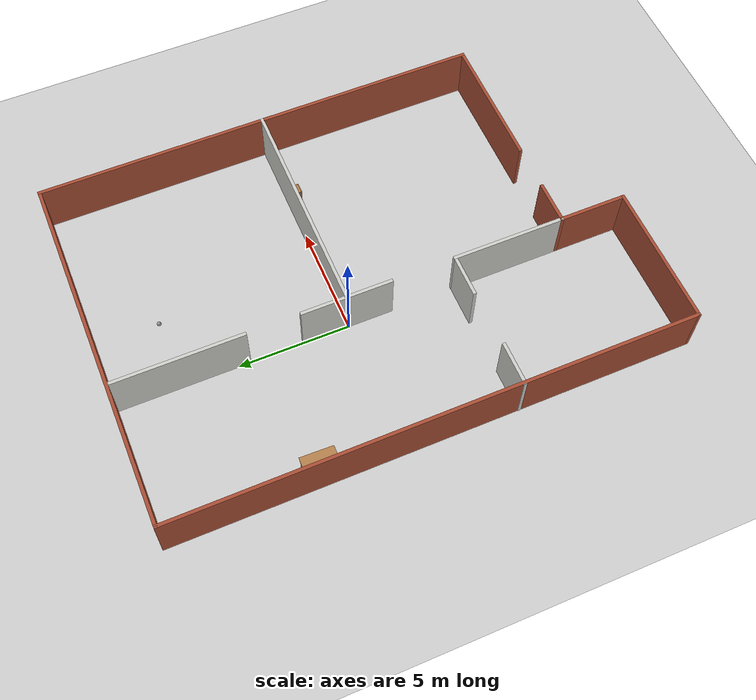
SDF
<sdf version="1.6">
 <world name="default">
  <model name="ground_plane">
   <static>1</static>
   <link name="link">
    <collision name="collision">
     <geometry><plane><normal>0 0 1</normal><size>100 100</size></plane></geometry>
     <surface><friction><ode><mu>100</mu><mu2>50</mu2></ode></friction></surface>
    </collision>
    <visual name="visual">
     <cast_shadows>0</cast_shadows>
     <geometry><plane><normal>0 0 1</normal><size>100 100</size></plane></geometry>
     <material>
      <script><uri>file://media/materials/scripts/gazebo.material</uri><name>Gazebo/Grey</name></script>
     </material>
    </visual>
   </link>
  </model>
  <model name="Building">
   <pose>1.88689 -1.28718 0 0 -0 0</pose>
   <link name="Wall_30">
    <collision name="Wall_30_Collision">
     <geometry><box><size>10.15 0.15 2.5</size></box></geometry>
     <pose>0 0 1.25 0 -0 0</pose>
    </collision>
    <visual name="Wall_30_Visual">
     <pose>0 0 1.25 0 -0 0</pose>
     <geometry><box><size>10.15 0.15 2.5</size></box></geometry>
     <material>
      <script><uri>file://media/materials/scripts/gazebo.material</uri><name>Gazebo/CeilingTiled</name></script>
      <ambient>0.203922 0.396078 0.643137 1</ambient>
     </material>
     <meta><layer>0</layer></meta>
    </visual>
    <pose>3.18412 1.325 0 0 -0 0</pose>
   </link>
   <link name="Wall_34">
    <collision name="Wall_34_Collision">
     <geometry><box><size>10.15 0.15 2.5</size></box></geometry>
     <pose>0 0 1.25 0 -0 0</pose>
    </collision>
    <visual name="Wall_34_Visual">
     <pose>0 0 1.25 0 -0 0</pose>
     <geometry><box><size>10.15 0.15 2.5</size></box></geometry>
     <material>
      <script><uri>file://media/materials/scripts/gazebo.material</uri><name>Gazebo/Bricks</name></script>
      <ambient>1 1 1 1</ambient>
     </material>
     <meta><layer>0</layer></meta>
    </visual>
    <pose>8.18412 -3.675 0 0 -0 -1.5708</pose>
   </link>
   <link name="Wall_36">
    <collision name="Wall_36_Collision">
     <geometry><box><size>6.15 0.15 2.5</size></box></geometry>
     <pose>0 0 1.25 0 -0 0</pose>
    </collision>
    <visual name="Wall_36_Visual">
     <pose>0 0 1.25 0 -0 0</pose>
     <geometry><box><size>6.15 0.15 2.5</size></box></geometry>
     <material>
      <script><uri>file://media/materials/scripts/gazebo.material</uri><name>Gazebo/Bricks</name></script>
      <ambient>1 1 1 1</ambient>
     </material>
     <meta><layer>0</layer></meta>
    </visual>
    <pose>5.18412 -8.675 0 0 -0 3.14159</pose>
   </link>
   <link name="Wall_38">
    <collision name="Wall_38_Collision">
     <geometry><box><size>5.2029 0.15 2.5</size></box></geometry>
     <pose>0 0 1.25 0 -0 0</pose>
    </collision>
    <visual name="Wall_38_Visual">
     <pose>0 0 1.25 0 -0 0</pose>
     <geometry><box><size>5.2029 0.15 2.5</size></box></geometry>
     <material>
      <script><uri>file://media/materials/scripts/gazebo.material</uri><name>Gazebo/CeilingTiled</name></script>
      <ambient>0.203922 0.396078 0.643137 1</ambient>
     </material>
     <meta><layer>0</layer></meta>
    </visual>
    <pose>-1.81588 -6.14855 0 0 -0 1.5708</pose>
   </link>
   <link name="Wall_40">
    <collision name="Wall_40_Collision">
     <geometry><box><size>2 0.15 2.5</size></box></geometry>
     <pose>0 0 1.25 0 -0 0</pose>
    </collision>
    <visual name="Wall_40_Visual">
     <pose>0 0 1.25 0 -0 0</pose>
     <geometry><box><size>2 0.15 2.5</size></box></geometry>
     <material>
      <script><uri>file://media/materials/scripts/gazebo.material</uri><name>Gazebo/Bricks</name></script>
      <ambient>1 1 1 1</ambient>
     </material>
     <meta><layer>0</layer></meta>
    </visual>
    <pose>-0.890877 -8.675 0 0 -0 0</pose>
   </link>
   <link name="Wall_42">
    <collision name="Wall_42_Collision">
     <geometry><box><size>3.15 0.15 2.5</size></box></geometry>
     <pose>0 0 1.25 0 -0 0</pose>
    </collision>
    <visual name="Wall_42_Visual">
     <pose>0 0 1.25 0 -0 0</pose>
     <geometry><box><size>3.15 0.15 2.5</size></box></geometry>
     <material>
      <script><uri>file://media/materials/scripts/gazebo.material</uri><name>Gazebo/Bricks</name></script>
      <ambient>1 1 1 1</ambient>
     </material>
     <meta><layer>0</layer></meta>
    </visual>
    <pose>-1.81588 -10.175 0 0 -0 -1.5708</pose>
   </link>
   <link name="Wall_44">
    <collision name="Wall_44_Collision">
     <geometry><box><size>6.5 0.15 2.5</size></box></geometry>
     <pose>0 0 1.25 0 -0 0</pose>
    </collision>
    <visual name="Wall_44_Visual">
     <pose>0 0 1.25 0 -0 0</pose>
     <geometry><box><size>6.5 0.15 2.5</size></box></geometry>
     <material>
      <script><uri>file://media/materials/scripts/gazebo.material</uri><name>Gazebo/Bricks</name></script>
      <ambient>1 1 1 1</ambient>
     </material>
     <meta><layer>0</layer></meta>
    </visual>
    <pose>-4.99088 -11.675 0 0 -0 3.14159</pose>
   </link>
   <link name="Wall_45">
    <collision name="Wall_45_Collision">
     <geometry><box><size>23.5 0.15 2.5</size></box></geometry>
     <pose>0 0 1.25 0 -0 0</pose>
    </collision>
    <visual name="Wall_45_Visual">
     <pose>0 0 1.25 0 -0 0</pose>
     <geometry><box><size>23.5 0.15 2.5</size></box></geometry>
     <material>
      <script><uri>file://media/materials/scripts/gazebo.material</uri><name>Gazebo/Bricks</name></script>
      <ambient>1 1 1 1</ambient>
     </material>
     <meta><layer>0</layer></meta>
    </visual>
    <pose>-8.16588 0 0 0 -0 1.5708</pose>
   </link>
   <link name="Wall_47">
    <collision name="Wall_47_Collision">
     <geometry><box><size>2.15 0.15 2.5</size></box></geometry>
     <pose>0 0 1.25 0 -0 0</pose>
    </collision>
    <visual name="Wall_47_Visual">
     <pose>0 0 1.25 0 -0 0</pose>
     <geometry><box><size>2.15 0.15 2.5</size></box></geometry>
     <material>
      <script><uri>file://media/materials/scripts/gazebo.material</uri><name>Gazebo/CeilingTiled</name></script>
      <ambient>0.203922 0.396078 0.643137 1</ambient>
     </material>
     <meta><layer>0</layer></meta>
    </visual>
    <pose>-1.81588 0.325 0 0 -0 1.5708</pose>
   </link>
   <link name="Wall_49">
    <collision name="Wall_49_Collision">
     <geometry><box><size>2 0.15 2.5</size></box></geometry>
     <pose>0 0 1.25 0 -0 0</pose>
    </collision>
    <visual name="Wall_49_Visual">
     <pose>0 0 1.25 0 -0 0</pose>
     <geometry><box><size>2 0.15 2.5</size></box></geometry>
     <material>
      <script><uri>file://media/materials/scripts/gazebo.material</uri><name>Gazebo/CeilingTiled</name></script>
      <ambient>0.203922 0.396078 0.643137 1</ambient>
     </material>
     <meta><layer>0</layer></meta>
    </visual>
    <pose>-7.25912 -3.70088 0 0 -0 0</pose>
   </link>
   <link name="Wall_51">
    <collision name="Wall_51_Collision">
     <geometry><box><size>2 0.15 2.5</size></box></geometry>
     <pose>0 0 1.25 0 -0 0</pose>
    </collision>
    <visual name="Wall_51_Visual">
     <pose>0 0 1.25 0 -0 0</pose>
     <geometry><box><size>2 0.15 2.5</size></box></geometry>
     <material>
      <script><uri>file://media/materials/scripts/gazebo.material</uri><name>Gazebo/CeilingTiled</name></script>
      <ambient>0.203922 0.396078 0.643137 1</ambient>
     </material>
     <meta><layer>0</layer></meta>
    </visual>
    <pose>-2.74088 -3.6221 0 0 -0 3.14159</pose>
   </link>
   <link name="Wall_53">
    <collision name="Wall_53_Collision">
     <geometry><box><size>2.15 0.15 2.5</size></box></geometry>
     <pose>0 0 1.25 0 -0 0</pose>
    </collision>
    <visual name="Wall_53_Visual">
     <pose>0 0 1.25 0 -0 0</pose>
     <geometry><box><size>2.15 0.15 2.5</size></box></geometry>
     <material>
      <script><uri>file://media/materials/scripts/gazebo.material</uri><name>Gazebo/CeilingTiled</name></script>
      <ambient>0.203922 0.396078 0.643137 1</ambient>
     </material>
     <meta><layer>0</layer></meta>
    </visual>
    <pose>-1.81588 2.325 0 0 -0 1.5708</pose>
   </link>
   <link name="Wall_55">
    <collision name="Wall_55_Collision">
     <geometry><box><size>16.5 0.15 2.5</size></box></geometry>
     <pose>0 0 1.25 0 -0 0</pose>
    </collision>
    <visual name="Wall_55_Visual">
     <pose>0 0 1.25 0 -0 0</pose>
     <geometry><box><size>16.5 0.15 2.5</size></box></geometry>
     <material>
      <script><uri>file://media/materials/scripts/gazebo.material</uri><name>Gazebo/Bricks</name></script>
      <ambient>1 1 1 1</ambient>
     </material>
     <meta><layer>0</layer></meta>
    </visual>
    <pose>0.009123 11.675 0 0 -0 0</pose>
   </link>
   <link name="Wall_57">
    <collision name="Wall_57_Collision">
     <geometry><box><size>10.5 0.15 2.5</size></box></geometry>
     <pose>0 0 1.25 0 -0 0</pose>
    </collision>
    <visual name="Wall_57_Visual">
     <pose>0 0 1.25 0 -0 0</pose>
     <geometry><box><size>10.5 0.15 2.5</size></box></geometry>
     <material>
      <script><uri>file://media/materials/scripts/gazebo.material</uri><name>Gazebo/Bricks</name></script>
      <ambient>1 1 1 1</ambient>
     </material>
     <meta><layer>0</layer></meta>
    </visual>
    <pose>8.18412 6.5 0 0 -0 1.5708</pose>
   </link>
   <link name="Wall_59">
    <collision name="Wall_59_Collision">
     <geometry><box><size>5.9 0.15 2.5</size></box></geometry>
     <pose>0 0 1.25 0 -0 0</pose>
    </collision>
    <visual name="Wall_59_Visual">
     <pose>0 0 1.25 0 -0 0</pose>
     <geometry><box><size>5.9 0.15 2.5</size></box></geometry>
     <material>
      <script><uri>file://media/materials/scripts/gazebo.material</uri><name>Gazebo/CeilingTiled</name></script>
      <ambient>0.203922 0.396078 0.643137 1</ambient>
     </material>
     <meta><layer>0</layer></meta>
    </visual>
    <pose>-1.81588 8.7 0 0 -0 -1.5708</pose>
   </link>
   <static>1</static>
  </model>
  <model name="table">
   <static>1</static>
   <link name="link">
    <collision name="surface">
     <pose>0 0 1 0 -0 0</pose>
     <geometry><box><size>1.5 0.8 0.03</size></box></geometry>
     <surface><friction><ode><mu>0.6</mu><mu2>0.6</mu2></ode></friction></surface>
    </collision>
    <visual name="visual1">
     <pose>0 0 1 0 -0 0</pose>
     <geometry><box><size>1.5 0.8 0.03</size></box></geometry>
     <material>
      <script><uri>file://media/materials/scripts/gazebo.material</uri><name>Gazebo/Wood</name></script>
     </material>
    </visual>
    <collision name="front_left_leg">
     <pose>0.68 0.38 0.5 0 -0 0</pose>
     <geometry><cylinder><radius>0.02</radius><length>1</length></cylinder></geometry>
    </collision>
    <visual name="front_left_leg">
     <pose>0.68 0.38 0.5 0 -0 0</pose>
     <geometry><cylinder><radius>0.02</radius><length>1</length></cylinder></geometry>
     <material>
      <script><uri>file://media/materials/scripts/gazebo.material</uri><name>Gazebo/Grey</name></script>
     </material>
    </visual>
    <collision name="front_right_leg">
     <pose>0.68 -0.38 0.5 0 -0 0</pose>
     <geometry><cylinder><radius>0.02</radius><length>1</length></cylinder></geometry>
    </collision>
    <visual name="front_right_leg">
     <pose>0.68 -0.38 0.5 0 -0 0</pose>
     <geometry><cylinder><radius>0.02</radius><length>1</length></cylinder></geometry>
     <material>
      <script><uri>file://media/materials/scripts/gazebo.material</uri><name>Gazebo/Grey</name></script>
     </material>
    </visual>
    <collision name="back_right_leg">
     <pose>-0.68 -0.38 0.5 0 -0 0</pose>
     <geometry><cylinder><radius>0.02</radius><length>1</length></cylinder></geometry>
    </collision>
    <visual name="back_right_leg">
     <pose>-0.68 -0.38 0.5 0 -0 0</pose>
     <geometry><cylinder><radius>0.02</radius><length>1</length></cylinder></geometry>
     <material>
      <script><uri>file://media/materials/scripts/gazebo.material</uri><name>Gazebo/Grey</name></script>
     </material>
    </visual>
    <collision name="back_left_leg">
     <pose>-0.68 0.38 0.5 0 -0 0</pose>
     <geometry><cylinder><radius>0.02</radius><length>1</length></cylinder></geometry>
    </collision>
    <visual name="back_left_leg">
     <pose>-0.68 0.38 0.5 0 -0 0</pose>
     <geometry><cylinder><radius>0.02</radius><length>1</length></cylinder></geometry>
     <material>
      <script><uri>file://media/materials/scripts/gazebo.material</uri><name>Gazebo/Grey</name></script>
     </material>
    </visual>
   </link>
   <pose>-5.62223 3.56497 0 0 0 -1.598</pose>
  </model>
  <model name="cabinet_0">
   <static>1</static>
   <link name="cabinet_bottom_plate">
    <inertial>
     <pose>0 0 -1 0 -0 0</pose>
     <inertia><ixx>2.05</ixx><ixy>0</ixy><ixz>0</ixz><iyy>2.05</iyy><iyz>0</iyz><izz>2.05</izz></inertia>
     <mass>25</mass>
    </inertial>
    <collision name="cabinet_bottom_plate_geom">
     <pose>0 0 0.01 0 -0 0</pose>
     <geometry><box><size>0.45 0.45 0.02</size></box></geometry>
    </collision>
    <visual name="cabinet_bottom_plate_geom_visual">
     <pose>0 0 0.01 0 -0 0</pose>
     <geometry><box><size>0.45 0.45 0.02</size></box></geometry>
     <material>
      <script><uri>file://media/materials/scripts/gazebo.material</uri><name>Gazebo/Wood</name></script>
     </material>
    </visual>
    <collision name="cabinet_bottom_plate_geom_cabinet_back_plate">
     <pose>0.235 0 0.51 0 -0 0</pose>
     <geometry><box><size>0.02 0.45 1.02</size></box></geometry>
    </collision>
    <visual name="cabinet_bottom_plate_geom_cabinet_back_plate_visual">
     <pose>0.235 0 0.51 0 -0 0</pose>
     <geometry><box><size>0.02 0.45 1.02</size></box></geometry>
     <material>
      <script><uri>file://media/materials/scripts/gazebo.material</uri><name>Gazebo/Wood</name></script>
     </material>
    </visual>
    <collision name="cabinet_bottom_plate_geom_cabinet_left_plate">
     <pose>0 0.235 0.51 0 -0 0</pose>
     <geometry><box><size>0.45 0.02 1.02</size></box></geometry>
    </collision>
    <visual name="cabinet_bottom_plate_geom_cabinet_left_plate_visual">
     <pose>0 0.235 0.51 0 -0 0</pose>
     <geometry><box><size>0.45 0.02 1.02</size></box></geometry>
     <material>
      <script><uri>file://media/materials/scripts/gazebo.material</uri><name>Gazebo/Wood</name></script>
     </material>
    </visual>
    <collision name="cabinet_bottom_plate_geom_cabinet_middle_plate">
     <pose>0 0 0.51 0 -0 0</pose>
     <geometry><box><size>0.45 0.45 0.02</size></box></geometry>
    </collision>
    <visual name="cabinet_bottom_plate_geom_cabinet_middle_plate_visual">
     <pose>0 0 0.51 0 -0 0</pose>
     <geometry><box><size>0.45 0.45 0.02</size></box></geometry>
     <material>
      <script><uri>file://media/materials/scripts/gazebo.material</uri><name>Gazebo/Wood</name></script>
     </material>
    </visual>
    <collision name="cabinet_bottom_plate_geom_cabinet_right_plate">
     <pose>0 -0.235 0.51 0 -0 0</pose>
     <geometry><box><size>0.45 0.02 1.02</size></box></geometry>
    </collision>
    <visual name="cabinet_bottom_plate_geom_cabinet_right_plate_visual">
     <pose>0 -0.235 0.51 0 -0 0</pose>
     <geometry><box><size>0.45 0.02 1.02</size></box></geometry>
     <material>
      <script><uri>file://media/materials/scripts/gazebo.material</uri><name>Gazebo/Wood</name></script>
     </material>
    </visual>
    <collision name="cabinet_bottom_plate_geom_cabinet_top_plate">
     <pose>0 0 1.01 0 -0 0</pose>
     <geometry><box><size>0.45 0.45 0.02</size></box></geometry>
    </collision>
    <visual name="cabinet_bottom_plate_geom_cabinet_top_plate_visual">
     <pose>0 0 1.01 0 -0 0</pose>
     <geometry><box><size>0.45 0.45 0.02</size></box></geometry>
     <material>
      <script><uri>file://media/materials/scripts/gazebo.material</uri><name>Gazebo/Wood</name></script>
     </material>
    </visual>
   </link>
   <pose>6.91797 -0.248257 0 0 -0 0</pose>
  </model>
  <model name="white_ball">
   <link name="link_0">
    <inertial>
     <mass>1</mass>
     <inertia><ixx>0.1</ixx><ixy>0</ixy><ixz>0</ixz><iyy>0.1</iyy><iyz>0</iyz><izz>0.1</izz></inertia>
    </inertial>
    <visual name="visual">
     <geometry><sphere><radius>0.1</radius></sphere></geometry>
     <material>
      <lighting>1</lighting>
      <script><uri>file://media/materials/scripts/gazebo.material</uri><name>Gazebo/Grey</name></script>
      <shader type="vertex"><normal_map>__default__</normal_map></shader>
      <ambient>1 1 1 1</ambient>
      <diffuse>1 1 1 1</diffuse>
      <specular>1 1 1 1</specular>
      <emissive>1 1 0.8 1</emissive>
     </material>
    </visual>
    <collision name="collision">
     <geometry><sphere><radius>0.1</radius></sphere></geometry>
     <surface>
      <friction>
       <ode><mu>1</mu><mu2>1</mu2><fdir1>0 0 0</fdir1><slip1>0</slip1><slip2>0</slip2></ode>
       <torsional>
        <coefficient>1</coefficient>
        <patch_radius>0</patch_radius>
        <surface_radius>0</surface_radius>
        <use_patch_radius>1</use_patch_radius>
        <ode><slip>0</slip></ode>
       </torsional>
      </friction>
      <bounce><restitution_coefficient>0</restitution_coefficient><threshold>1e+06</threshold></bounce>
      <contact>
       <collide_without_contact>0</collide_without_contact>
       <collide_without_contact_bitmask>1</collide_without_contact_bitmask>
       <collide_bitmask>1</collide_bitmask>
       <ode>
        <soft_cfm>0</soft_cfm>
        <soft_erp>0.2</soft_erp>
        <kp>1e+13</kp>
        <kd>1</kd>
        <max_vel>0.01</max_vel>
        <min_depth>0</min_depth>
       </ode>
       <bullet>
        <split_impulse>1</split_impulse>
        <split_impulse_penetration_threshold>-0.01</split_impulse_penetration_threshold>
        <soft_cfm>0</soft_cfm>
        <soft_erp>0.2</soft_erp>
        <kp>1e+13</kp>
        <kd>1</kd>
       </bullet>
      </contact>
     </surface>
    </collision>
   </link>
   <static>0</static>
   <pose>3.23851 7.49251 0.1 0 -0 0</pose>
  </model>
 </world>
</sdf>
